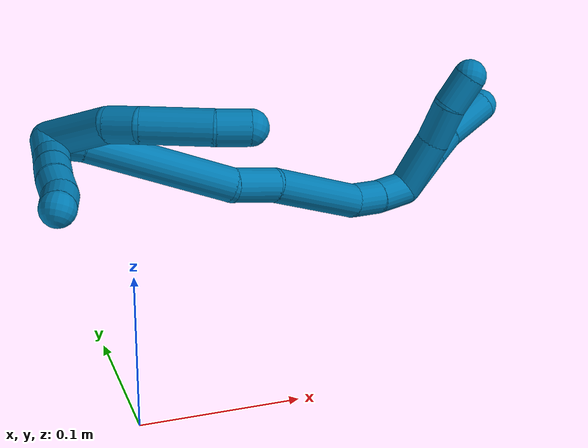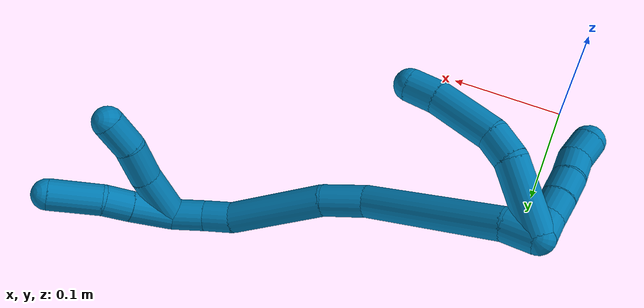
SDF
<sdf version="1.7">
 <world name="default">
  <model name="photoneo_s_sensor">
   <static>1</static>
   <pose>0 0 2 1.57079 1.57079 3.14159</pose>
   <link name="link">
    <inertial><mass>0.1</mass></inertial>
    <sensor name="sensor" type="depth">
     <update_rate>30</update_rate>
     <camera>
      <horizontal_fov>1.22</horizontal_fov>
      <image><width>1920</width><height>1200</height><format>B8G8R8</format></image>
      <clip><near>0.1</near><far>4</far></clip>
      <depth_camera><output>points</output></depth_camera>
     </camera>
     <plugin name="camera_plugin" filename="libgazebo_ros_depth_camera.so">
      <baseline>0.2</baseline>
      <alwaysOn>1</alwaysOn>
      <updateRate>0.0</updateRate>
      <cameraName>camera_ir</cameraName>
      <imageTopicName>/camera/color/image_raw</imageTopicName>
      <cameraInfoTopicName>/camera/color/camera_info</cameraInfoTopicName>
      <depthImageTopicName>/camera/depth/image_raw</depthImageTopicName>
      <depthImageCameraInfoTopicName>/camera/depth/camera_info</depthImageCameraInfoTopicName>
      <pointCloudTopicName>/camera/depth/points</pointCloudTopicName>
      <frameName>fr_optical</frameName>
      <pointCloudCutoff>0.1</pointCloudCutoff>
      <pointCloudCutoffMax>2.0</pointCloudCutoffMax>
      <distortionK1>0</distortionK1>
      <distortionK2>0</distortionK2>
      <distortionK3>0</distortionK3>
      <distortionT1>0</distortionT1>
      <distortionT2>0</distortionT2>
      <CxPrime>0</CxPrime>
      <Cx>0</Cx>
      <Cy>0</Cy>
      <focalLength>0</focalLength>
      <hackBaseline>0</hackBaseline>
     </plugin>
    </sensor>
   </link>
  </model>
  <model name="bin">
   <static>1</static>
   <link name="bottom">
    <collision name="collision-bottom">
     <pose>0 0 -0.01 0 -0 0</pose>
     <geometry><box><size>0.8 0.6 0.02</size></box></geometry>
     <surface>
      <friction><ode><mu>100</mu><mu2>100</mu2></ode></friction>
      <contact><collide_bitmask>65535</collide_bitmask></contact>
     </surface>
    </collision>
   </link>
   <link name="west_wall">
    <collision name="collision-west_wall">
     <pose>-0.41 0 0.1 0 -0 0</pose>
     <geometry><box><size>0.02 0.6 0.2</size></box></geometry>
     <surface>
      <friction><ode><mu>100</mu><mu2>100</mu2></ode></friction>
      <contact><collide_bitmask>65535</collide_bitmask></contact>
     </surface>
    </collision>
   </link>
   <link name="east_wall">
    <collision name="collision-east_wall">
     <pose>0.41 0 0.1 0 -0 0</pose>
     <geometry><box><size>0.02 0.6 0.2</size></box></geometry>
     <surface>
      <friction><ode><mu>100</mu><mu2>100</mu2></ode></friction>
      <contact><collide_bitmask>65535</collide_bitmask></contact>
     </surface>
    </collision>
   </link>
   <link name="south_wall">
    <collision name="collision-south_wall">
     <pose>0 -0.31 0.1 0 -0 0</pose>
     <geometry><box><size>0.8 0.02 0.2</size></box></geometry>
     <surface>
      <friction><ode><mu>100</mu><mu2>100</mu2></ode></friction>
      <contact><collide_bitmask>65535</collide_bitmask></contact>
     </surface>
    </collision>
   </link>
   <link name="north_wall">
    <collision name="collision-north_wall">
     <pose>0 0.31 0.1 0 -0 0</pose>
     <geometry><box><size>0.8 0.02 0.2</size></box></geometry>
     <surface>
      <friction><ode><mu>100</mu><mu2>100</mu2></ode></friction>
      <contact><collide_bitmask>65535</collide_bitmask></contact>
     </surface>
    </collision>
   </link>
  </model>
  <model name="9">
   <static>0</static>
   <link name="9">
    <collision name="collision-cylinder-e_1_2_8">
     <pose>0.020008 -0.018829 0.003181 1.40345 0.808725 0.694146</pose>
     <geometry><cylinder><radius>0.0125</radius><length>0.055315</length></cylinder></geometry>
     <surface>
      <friction><ode><mu>1.16</mu><mu2>1.16</mu2><slip1>0</slip1><slip2>0</slip2></ode></friction>
      <contact><ode><kp>1e+06</kp><kd>1</kd><max_vel>0</max_vel><min_depth>0.001</min_depth></ode></contact>
     </surface>
    </collision>
    <visual name="visual-cylinder-e_1_2_8">
     <pose>0.020008 -0.018829 0.003181 1.40345 0.808725 0.694146</pose>
     <geometry><cylinder><radius>0.0125</radius><length>0.055315</length></cylinder></geometry>
     <material><ambient>0 0.490196 0.709804 1</ambient></material>
    </visual>
    <collision name="collision-cylinder-e_2_8_9">
     <pose>0.050296 -0.042299 0.006688 1.50053 1.14574 1.08263</pose>
     <geometry><cylinder><radius>0.0125</radius><length>0.022571</length></cylinder></geometry>
     <surface>
      <friction><ode><mu>1.16</mu><mu2>1.16</mu2><slip1>0</slip1><slip2>0</slip2></ode></friction>
      <contact><ode><kp>1e+06</kp><kd>1</kd><max_vel>0</max_vel><min_depth>0.001</min_depth></ode></contact>
     </surface>
    </collision>
    <visual name="visual-cylinder-e_2_8_9">
     <pose>0.050296 -0.042299 0.006688 1.50053 1.14574 1.08263</pose>
     <geometry><cylinder><radius>0.0125</radius><length>0.022571</length></cylinder></geometry>
     <material><ambient>0 0.490196 0.709804 1</ambient></material>
    </visual>
    <collision name="collision-cylinder-e_3_9_10">
     <pose>0.084541 -0.049872 0.010203 0.743302 1.39202 0.62963</pose>
     <geometry><cylinder><radius>0.0125</radius><length>0.048704</length></cylinder></geometry>
     <surface>
      <friction><ode><mu>1.16</mu><mu2>1.16</mu2><slip1>0</slip1><slip2>0</slip2></ode></friction>
      <contact><ode><kp>1e+06</kp><kd>1</kd><max_vel>0</max_vel><min_depth>0.001</min_depth></ode></contact>
     </surface>
    </collision>
    <visual name="visual-cylinder-e_3_9_10">
     <pose>0.084541 -0.049872 0.010203 0.743302 1.39202 0.62963</pose>
     <geometry><cylinder><radius>0.0125</radius><length>0.048704</length></cylinder></geometry>
     <material><ambient>0 0.490196 0.709804 1</ambient></material>
    </visual>
    <collision name="collision-cylinder-e_4_10_6">
     <pose>0.119919 -0.052331 0.015941 -0.182701 1.34738 -0.145994</pose>
     <geometry><cylinder><radius>0.0125</radius><length>0.02341</length></cylinder></geometry>
     <surface>
      <friction><ode><mu>1.16</mu><mu2>1.16</mu2><slip1>0</slip1><slip2>0</slip2></ode></friction>
      <contact><ode><kp>1e+06</kp><kd>1</kd><max_vel>0</max_vel><min_depth>0.001</min_depth></ode></contact>
     </surface>
    </collision>
    <visual name="visual-cylinder-e_4_10_6">
     <pose>0.119919 -0.052331 0.015941 -0.182701 1.34738 -0.145994</pose>
     <geometry><cylinder><radius>0.0125</radius><length>0.02341</length></cylinder></geometry>
     <material><ambient>0 0.490196 0.709804 1</ambient></material>
    </visual>
    <collision name="collision-cylinder-e_1_2_11">
     <pose>0.002916 -0.005837 -0.007578 2.48528 0.295847 0.825105</pose>
     <geometry><cylinder><radius>0.0125</radius><length>0.02</length></cylinder></geometry>
     <surface>
      <friction><ode><mu>1.16</mu><mu2>1.16</mu2><slip1>0</slip1><slip2>0</slip2></ode></friction>
      <contact><ode><kp>1e+06</kp><kd>1</kd><max_vel>0</max_vel><min_depth>0.001</min_depth></ode></contact>
     </surface>
    </collision>
    <visual name="visual-cylinder-e_1_2_11">
     <pose>0.002916 -0.005837 -0.007578 2.48528 0.295847 0.825105</pose>
     <geometry><cylinder><radius>0.0125</radius><length>0.02</length></cylinder></geometry>
     <material><ambient>0 0.490196 0.709804 1</ambient></material>
    </visual>
    <collision name="collision-cylinder-e_2_11_12">
     <pose>0.007696 -0.019573 -0.020998 2.20757 0.187601 0.368922</pose>
     <geometry><cylinder><radius>0.0125</radius><length>0.02</length></cylinder></geometry>
     <surface>
      <friction><ode><mu>1.16</mu><mu2>1.16</mu2><slip1>0</slip1><slip2>0</slip2></ode></friction>
      <contact><ode><kp>1e+06</kp><kd>1</kd><max_vel>0</max_vel><min_depth>0.001</min_depth></ode></contact>
     </surface>
    </collision>
    <visual name="visual-cylinder-e_2_11_12">
     <pose>0.007696 -0.019573 -0.020998 2.20757 0.187601 0.368922</pose>
     <geometry><cylinder><radius>0.0125</radius><length>0.02</length></cylinder></geometry>
     <material><ambient>0 0.490196 0.709804 1</ambient></material>
    </visual>
    <collision name="collision-cylinder-e_3_12_13">
     <pose>0.011865 -0.034941 -0.033077 2.26657 0.232479 0.489273</pose>
     <geometry><cylinder><radius>0.0125</radius><length>0.02</length></cylinder></geometry>
     <surface>
      <friction><ode><mu>1.16</mu><mu2>1.16</mu2><slip1>0</slip1><slip2>0</slip2></ode></friction>
      <contact><ode><kp>1e+06</kp><kd>1</kd><max_vel>0</max_vel><min_depth>0.001</min_depth></ode></contact>
     </surface>
    </collision>
    <visual name="visual-cylinder-e_3_12_13">
     <pose>0.011865 -0.034941 -0.033077 2.26657 0.232479 0.489273</pose>
     <geometry><cylinder><radius>0.0125</radius><length>0.02</length></cylinder></geometry>
     <material><ambient>0 0.490196 0.709804 1</ambient></material>
    </visual>
    <collision name="collision-cylinder-e_4_13_14">
     <pose>0.017638 -0.048994 -0.045994 2.36339 0.354272 0.823327</pose>
     <geometry><cylinder><radius>0.0125</radius><length>0.02</length></cylinder></geometry>
     <surface>
      <friction><ode><mu>1.16</mu><mu2>1.16</mu2><slip1>0</slip1><slip2>0</slip2></ode></friction>
      <contact><ode><kp>1e+06</kp><kd>1</kd><max_vel>0</max_vel><min_depth>0.001</min_depth></ode></contact>
     </surface>
    </collision>
    <visual name="visual-cylinder-e_4_13_14">
     <pose>0.017638 -0.048994 -0.045994 2.36339 0.354272 0.823327</pose>
     <geometry><cylinder><radius>0.0125</radius><length>0.02</length></cylinder></geometry>
     <material><ambient>0 0.490196 0.709804 1</ambient></material>
    </visual>
    <collision name="collision-cylinder-e_5_14_5">
     <pose>0.021917 -0.063372 -0.058887 2.2438 0.081081 0.168019</pose>
     <geometry><cylinder><radius>0.0125</radius><length>0.02</length></cylinder></geometry>
     <surface>
      <friction><ode><mu>1.16</mu><mu2>1.16</mu2><slip1>0</slip1><slip2>0</slip2></ode></friction>
      <contact><ode><kp>1e+06</kp><kd>1</kd><max_vel>0</max_vel><min_depth>0.001</min_depth></ode></contact>
     </surface>
    </collision>
    <visual name="visual-cylinder-e_5_14_5">
     <pose>0.021917 -0.063372 -0.058887 2.2438 0.081081 0.168019</pose>
     <geometry><cylinder><radius>0.0125</radius><length>0.02</length></cylinder></geometry>
     <material><ambient>0 0.490196 0.709804 1</ambient></material>
    </visual>
    <collision name="collision-cylinder-e_1_2_15">
     <pose>0.011929 0.001841 0.001554 -0.869636 1.37151 -0.72636</pose>
     <geometry><cylinder><radius>0.0125</radius><length>0.024341</length></cylinder></geometry>
     <surface>
      <friction><ode><mu>1.16</mu><mu2>1.16</mu2><slip1>0</slip1><slip2>0</slip2></ode></friction>
      <contact><ode><kp>1e+06</kp><kd>1</kd><max_vel>0</max_vel><min_depth>0.001</min_depth></ode></contact>
     </surface>
    </collision>
    <visual name="visual-cylinder-e_1_2_15">
     <pose>0.011929 0.001841 0.001554 -0.869636 1.37151 -0.72636</pose>
     <geometry><cylinder><radius>0.0125</radius><length>0.024341</length></cylinder></geometry>
     <material><ambient>0 0.490196 0.709804 1</ambient></material>
    </visual>
    <collision name="collision-cylinder-e_2_15_16">
     <pose>0.07549 0.022932 0.004765 -1.48496 1.21272 -1.13351</pose>
     <geometry><cylinder><radius>0.0125</radius><length>0.110255</length></cylinder></geometry>
     <surface>
      <friction><ode><mu>1.16</mu><mu2>1.16</mu2><slip1>0</slip1><slip2>0</slip2></ode></friction>
      <contact><ode><kp>1e+06</kp><kd>1</kd><max_vel>0</max_vel><min_depth>0.001</min_depth></ode></contact>
     </surface>
    </collision>
    <visual name="visual-cylinder-e_2_15_16">
     <pose>0.07549 0.022932 0.004765 -1.48496 1.21272 -1.13351</pose>
     <geometry><cylinder><radius>0.0125</radius><length>0.110255</length></cylinder></geometry>
     <material><ambient>0 0.490196 0.709804 1</ambient></material>
    </visual>
    <collision name="collision-cylinder-e_3_16_17">
     <pose>0.141568 0.05005 0.011831 -0.968549 0.986755 -0.551352</pose>
     <geometry><cylinder><radius>0.0125</radius><length>0.034636</length></cylinder></geometry>
     <surface>
      <friction><ode><mu>1.16</mu><mu2>1.16</mu2><slip1>0</slip1><slip2>0</slip2></ode></friction>
      <contact><ode><kp>1e+06</kp><kd>1</kd><max_vel>0</max_vel><min_depth>0.001</min_depth></ode></contact>
     </surface>
    </collision>
    <visual name="visual-cylinder-e_3_16_17">
     <pose>0.141568 0.05005 0.011831 -0.968549 0.986755 -0.551352</pose>
     <geometry><cylinder><radius>0.0125</radius><length>0.034636</length></cylinder></geometry>
     <material><ambient>0 0.490196 0.709804 1</ambient></material>
    </visual>
    <collision name="collision-cylinder-e_4_17_18">
     <pose>0.18628 0.083039 0.024868 -1.27601 0.856288 -0.652571</pose>
     <geometry><cylinder><radius>0.0125</radius><length>0.080129</length></cylinder></geometry>
     <surface>
      <friction><ode><mu>1.16</mu><mu2>1.16</mu2><slip1>0</slip1><slip2>0</slip2></ode></friction>
      <contact><ode><kp>1e+06</kp><kd>1</kd><max_vel>0</max_vel><min_depth>0.001</min_depth></ode></contact>
     </surface>
    </collision>
    <visual name="visual-cylinder-e_4_17_18">
     <pose>0.18628 0.083039 0.024868 -1.27601 0.856288 -0.652571</pose>
     <geometry><cylinder><radius>0.0125</radius><length>0.080129</length></cylinder></geometry>
     <material><ambient>0 0.490196 0.709804 1</ambient></material>
    </visual>
    <collision name="collision-cylinder-e_5_18_19">
     <pose>0.226147 0.112985 0.037396 -0.777657 0.949173 -0.414896</pose>
     <geometry><cylinder><radius>0.0125</radius><length>0.023622</length></cylinder></geometry>
     <surface>
      <friction><ode><mu>1.16</mu><mu2>1.16</mu2><slip1>0</slip1><slip2>0</slip2></ode></friction>
      <contact><ode><kp>1e+06</kp><kd>1</kd><max_vel>0</max_vel><min_depth>0.001</min_depth></ode></contact>
     </surface>
    </collision>
    <visual name="visual-cylinder-e_5_18_19">
     <pose>0.226147 0.112985 0.037396 -0.777657 0.949173 -0.414896</pose>
     <geometry><cylinder><radius>0.0125</radius><length>0.023622</length></cylinder></geometry>
     <material><ambient>0 0.490196 0.709804 1</ambient></material>
    </visual>
    <collision name="collision-cylinder-e_6_19_1">
     <pose>0.245772 0.123227 0.049556 -0.641015 0.836022 -0.29279</pose>
     <geometry><cylinder><radius>0.0125</radius><length>0.027018</length></cylinder></geometry>
     <surface>
      <friction><ode><mu>1.16</mu><mu2>1.16</mu2><slip1>0</slip1><slip2>0</slip2></ode></friction>
      <contact><ode><kp>1e+06</kp><kd>1</kd><max_vel>0</max_vel><min_depth>0.001</min_depth></ode></contact>
     </surface>
    </collision>
    <visual name="visual-cylinder-e_6_19_1">
     <pose>0.245772 0.123227 0.049556 -0.641015 0.836022 -0.29279</pose>
     <geometry><cylinder><radius>0.0125</radius><length>0.027018</length></cylinder></geometry>
     <material><ambient>0 0.490196 0.709804 1</ambient></material>
    </visual>
    <collision name="collision-cylinder-e_1_1_20">
     <pose>0.26363 0.130618 0.072999 -0.121477 0.44794 -0.027704</pose>
     <geometry><cylinder><radius>0.0125</radius><length>0.036178</length></cylinder></geometry>
     <surface>
      <friction><ode><mu>1.16</mu><mu2>1.16</mu2><slip1>0</slip1><slip2>0</slip2></ode></friction>
      <contact><ode><kp>1e+06</kp><kd>1</kd><max_vel>0</max_vel><min_depth>0.001</min_depth></ode></contact>
     </surface>
    </collision>
    <visual name="visual-cylinder-e_1_1_20">
     <pose>0.26363 0.130618 0.072999 -0.121477 0.44794 -0.027704</pose>
     <geometry><cylinder><radius>0.0125</radius><length>0.036178</length></cylinder></geometry>
     <material><ambient>0 0.490196 0.709804 1</ambient></material>
    </visual>
    <collision name="collision-cylinder-e_2_20_21">
     <pose>0.276524 0.133466 0.098949 -0.089074 0.476367 -0.02164</pose>
     <geometry><cylinder><radius>0.0125</radius><length>0.022066</length></cylinder></geometry>
     <surface>
      <friction><ode><mu>1.16</mu><mu2>1.16</mu2><slip1>0</slip1><slip2>0</slip2></ode></friction>
      <contact><ode><kp>1e+06</kp><kd>1</kd><max_vel>0</max_vel><min_depth>0.001</min_depth></ode></contact>
     </surface>
    </collision>
    <visual name="visual-cylinder-e_2_20_21">
     <pose>0.276524 0.133466 0.098949 -0.089074 0.476367 -0.02164</pose>
     <geometry><cylinder><radius>0.0125</radius><length>0.022066</length></cylinder></geometry>
     <material><ambient>0 0.490196 0.709804 1</ambient></material>
    </visual>
    <collision name="collision-cylinder-e_3_21_4">
     <pose>0.293738 0.139883 0.124758 -0.332721 0.621411 -0.107731</pose>
     <geometry><cylinder><radius>0.0125</radius><length>0.041756</length></cylinder></geometry>
     <surface>
      <friction><ode><mu>1.16</mu><mu2>1.16</mu2><slip1>0</slip1><slip2>0</slip2></ode></friction>
      <contact><ode><kp>1e+06</kp><kd>1</kd><max_vel>0</max_vel><min_depth>0.001</min_depth></ode></contact>
     </surface>
    </collision>
    <visual name="visual-cylinder-e_3_21_4">
     <pose>0.293738 0.139883 0.124758 -0.332721 0.621411 -0.107731</pose>
     <geometry><cylinder><radius>0.0125</radius><length>0.041756</length></cylinder></geometry>
     <material><ambient>0 0.490196 0.709804 1</ambient></material>
    </visual>
    <collision name="collision-cylinder-e_1_1_22">
     <pose>0.262286 0.116503 0.073204 0.637494 0.308085 0.10239</pose>
     <geometry><cylinder><radius>0.0125</radius><length>0.042807</length></cylinder></geometry>
     <surface>
      <friction><ode><mu>1.16</mu><mu2>1.16</mu2><slip1>0</slip1><slip2>0</slip2></ode></friction>
      <contact><ode><kp>1e+06</kp><kd>1</kd><max_vel>0</max_vel><min_depth>0.001</min_depth></ode></contact>
     </surface>
    </collision>
    <visual name="visual-cylinder-e_1_1_22">
     <pose>0.262286 0.116503 0.073204 0.637494 0.308085 0.10239</pose>
     <geometry><cylinder><radius>0.0125</radius><length>0.042807</length></cylinder></geometry>
     <material><ambient>0 0.490196 0.709804 1</ambient></material>
    </visual>
    <collision name="collision-cylinder-e_2_22_23">
     <pose>0.271713 0.094431 0.10083 0.72393 0.193377 0.073418</pose>
     <geometry><cylinder><radius>0.0125</radius><length>0.030564</length></cylinder></geometry>
     <surface>
      <friction><ode><mu>1.16</mu><mu2>1.16</mu2><slip1>0</slip1><slip2>0</slip2></ode></friction>
      <contact><ode><kp>1e+06</kp><kd>1</kd><max_vel>0</max_vel><min_depth>0.001</min_depth></ode></contact>
     </surface>
    </collision>
    <visual name="visual-cylinder-e_2_22_23">
     <pose>0.271713 0.094431 0.10083 0.72393 0.193377 0.073418</pose>
     <geometry><cylinder><radius>0.0125</radius><length>0.030564</length></cylinder></geometry>
     <material><ambient>0 0.490196 0.709804 1</ambient></material>
    </visual>
    <collision name="collision-cylinder-e_3_23_3">
     <pose>0.279466 0.077979 0.12263 0.552891 0.370111 0.10612</pose>
     <geometry><cylinder><radius>0.0125</radius><length>0.026629</length></cylinder></geometry>
     <surface>
      <friction><ode><mu>1.16</mu><mu2>1.16</mu2><slip1>0</slip1><slip2>0</slip2></ode></friction>
      <contact><ode><kp>1e+06</kp><kd>1</kd><max_vel>0</max_vel><min_depth>0.001</min_depth></ode></contact>
     </surface>
    </collision>
    <visual name="visual-cylinder-e_3_23_3">
     <pose>0.279466 0.077979 0.12263 0.552891 0.370111 0.10612</pose>
     <geometry><cylinder><radius>0.0125</radius><length>0.026629</length></cylinder></geometry>
     <material><ambient>0 0.490196 0.709804 1</ambient></material>
    </visual>
    <collision name="collision-sphere-3">
     <pose>0.284282 0.071461 0.133193 0 -0 0</pose>
     <geometry><sphere><radius>0.0125</radius></sphere></geometry>
     <surface>
      <friction><ode><mu>1.16</mu><mu2>1.16</mu2><slip1>0</slip1><slip2>0</slip2></ode></friction>
      <contact><ode><kp>1e+06</kp><kd>1</kd><max_vel>0</max_vel><min_depth>0.001</min_depth></ode></contact>
     </surface>
    </collision>
    <visual name="visual-sphere-3">
     <pose>0.284282 0.071461 0.133193 0 -0 0</pose>
     <geometry><sphere><radius>0.0125</radius></sphere></geometry>
     <material><ambient>0 0.490196 0.709804 1</ambient></material>
    </visual>
    <collision name="collision-sphere-23">
     <pose>0.27465 0.084498 0.112066 0 -0 0</pose>
     <geometry><sphere><radius>0.0125</radius></sphere></geometry>
     <surface>
      <friction><ode><mu>1.16</mu><mu2>1.16</mu2><slip1>0</slip1><slip2>0</slip2></ode></friction>
      <contact><ode><kp>1e+06</kp><kd>1</kd><max_vel>0</max_vel><min_depth>0.001</min_depth></ode></contact>
     </surface>
    </collision>
    <visual name="visual-sphere-23">
     <pose>0.27465 0.084498 0.112066 0 -0 0</pose>
     <geometry><sphere><radius>0.0125</radius></sphere></geometry>
     <material><ambient>0 0.490196 0.709804 1</ambient></material>
    </visual>
    <collision name="collision-sphere-22">
     <pose>0.268776 0.104364 0.089594 0 -0 0</pose>
     <geometry><sphere><radius>0.0125</radius></sphere></geometry>
     <surface>
      <friction><ode><mu>1.16</mu><mu2>1.16</mu2><slip1>0</slip1><slip2>0</slip2></ode></friction>
      <contact><ode><kp>1e+06</kp><kd>1</kd><max_vel>0</max_vel><min_depth>0.001</min_depth></ode></contact>
     </surface>
    </collision>
    <visual name="visual-sphere-22">
     <pose>0.268776 0.104364 0.089594 0 -0 0</pose>
     <geometry><sphere><radius>0.0125</radius></sphere></geometry>
     <material><ambient>0 0.490196 0.709804 1</ambient></material>
    </visual>
    <collision name="collision-sphere-4">
     <pose>0.305893 0.145427 0.140803 0 -0 0</pose>
     <geometry><sphere><radius>0.0125</radius></sphere></geometry>
     <surface>
      <friction><ode><mu>1.16</mu><mu2>1.16</mu2><slip1>0</slip1><slip2>0</slip2></ode></friction>
      <contact><ode><kp>1e+06</kp><kd>1</kd><max_vel>0</max_vel><min_depth>0.001</min_depth></ode></contact>
     </surface>
    </collision>
    <visual name="visual-sphere-4">
     <pose>0.305893 0.145427 0.140803 0 -0 0</pose>
     <geometry><sphere><radius>0.0125</radius></sphere></geometry>
     <material><ambient>0 0.490196 0.709804 1</ambient></material>
    </visual>
    <collision name="collision-sphere-21">
     <pose>0.281583 0.134338 0.108714 0 -0 0</pose>
     <geometry><sphere><radius>0.0125</radius></sphere></geometry>
     <surface>
      <friction><ode><mu>1.16</mu><mu2>1.16</mu2><slip1>0</slip1><slip2>0</slip2></ode></friction>
      <contact><ode><kp>1e+06</kp><kd>1</kd><max_vel>0</max_vel><min_depth>0.001</min_depth></ode></contact>
     </surface>
    </collision>
    <visual name="visual-sphere-21">
     <pose>0.281583 0.134338 0.108714 0 -0 0</pose>
     <geometry><sphere><radius>0.0125</radius></sphere></geometry>
     <material><ambient>0 0.490196 0.709804 1</ambient></material>
    </visual>
    <collision name="collision-sphere-20">
     <pose>0.271464 0.132594 0.089183 0 -0 0</pose>
     <geometry><sphere><radius>0.0125</radius></sphere></geometry>
     <surface>
      <friction><ode><mu>1.16</mu><mu2>1.16</mu2><slip1>0</slip1><slip2>0</slip2></ode></friction>
      <contact><ode><kp>1e+06</kp><kd>1</kd><max_vel>0</max_vel><min_depth>0.001</min_depth></ode></contact>
     </surface>
    </collision>
    <visual name="visual-sphere-20">
     <pose>0.271464 0.132594 0.089183 0 -0 0</pose>
     <geometry><sphere><radius>0.0125</radius></sphere></geometry>
     <material><ambient>0 0.490196 0.709804 1</ambient></material>
    </visual>
    <collision name="collision-sphere-11">
     <pose>0.005831 -0.011674 -0.015157 0 -0 0</pose>
     <geometry><sphere><radius>0.0125</radius></sphere></geometry>
     <surface>
      <friction><ode><mu>1.16</mu><mu2>1.16</mu2><slip1>0</slip1><slip2>0</slip2></ode></friction>
      <contact><ode><kp>1e+06</kp><kd>1</kd><max_vel>0</max_vel><min_depth>0.001</min_depth></ode></contact>
     </surface>
    </collision>
    <visual name="visual-sphere-11">
     <pose>0.005831 -0.011674 -0.015157 0 -0 0</pose>
     <geometry><sphere><radius>0.0125</radius></sphere></geometry>
     <material><ambient>0 0.490196 0.709804 1</ambient></material>
    </visual>
    <collision name="collision-sphere-6">
     <pose>0.131334 -0.05186 0.018492 0 -0 0</pose>
     <geometry><sphere><radius>0.0125</radius></sphere></geometry>
     <surface>
      <friction><ode><mu>1.16</mu><mu2>1.16</mu2><slip1>0</slip1><slip2>0</slip2></ode></friction>
      <contact><ode><kp>1e+06</kp><kd>1</kd><max_vel>0</max_vel><min_depth>0.001</min_depth></ode></contact>
     </surface>
    </collision>
    <visual name="visual-sphere-6">
     <pose>0.131334 -0.05186 0.018492 0 -0 0</pose>
     <geometry><sphere><radius>0.0125</radius></sphere></geometry>
     <material><ambient>0 0.490196 0.709804 1</ambient></material>
    </visual>
    <collision name="collision-sphere-10">
     <pose>0.108505 -0.052803 0.013391 0 -0 0</pose>
     <geometry><sphere><radius>0.0125</radius></sphere></geometry>
     <surface>
      <friction><ode><mu>1.16</mu><mu2>1.16</mu2><slip1>0</slip1><slip2>0</slip2></ode></friction>
      <contact><ode><kp>1e+06</kp><kd>1</kd><max_vel>0</max_vel><min_depth>0.001</min_depth></ode></contact>
     </surface>
    </collision>
    <visual name="visual-sphere-10">
     <pose>0.108505 -0.052803 0.013391 0 -0 0</pose>
     <geometry><sphere><radius>0.0125</radius></sphere></geometry>
     <material><ambient>0 0.490196 0.709804 1</ambient></material>
    </visual>
    <collision name="collision-sphere-9">
     <pose>0.060577 -0.046942 0.007015 0 -0 0</pose>
     <geometry><sphere><radius>0.0125</radius></sphere></geometry>
     <surface>
      <friction><ode><mu>1.16</mu><mu2>1.16</mu2><slip1>0</slip1><slip2>0</slip2></ode></friction>
      <contact><ode><kp>1e+06</kp><kd>1</kd><max_vel>0</max_vel><min_depth>0.001</min_depth></ode></contact>
     </surface>
    </collision>
    <visual name="visual-sphere-9">
     <pose>0.060577 -0.046942 0.007015 0 -0 0</pose>
     <geometry><sphere><radius>0.0125</radius></sphere></geometry>
     <material><ambient>0 0.490196 0.709804 1</ambient></material>
    </visual>
    <collision name="collision-sphere-2">
     <geometry><sphere><radius>0.0125</radius></sphere></geometry>
     <surface>
      <friction><ode><mu>1.16</mu><mu2>1.16</mu2><slip1>0</slip1><slip2>0</slip2></ode></friction>
      <contact><ode><kp>1e+06</kp><kd>1</kd><max_vel>0</max_vel><min_depth>0.001</min_depth></ode></contact>
     </surface>
    </collision>
    <visual name="visual-sphere-2">
     <geometry><sphere><radius>0.0125</radius></sphere></geometry>
     <material><ambient>0 0.490196 0.709804 1</ambient></material>
    </visual>
    <collision name="collision-sphere-19">
     <pose>0.235749 0.117811 0.042297 0 -0 0</pose>
     <geometry><sphere><radius>0.0125</radius></sphere></geometry>
     <surface>
      <friction><ode><mu>1.16</mu><mu2>1.16</mu2><slip1>0</slip1><slip2>0</slip2></ode></friction>
      <contact><ode><kp>1e+06</kp><kd>1</kd><max_vel>0</max_vel><min_depth>0.001</min_depth></ode></contact>
     </surface>
    </collision>
    <visual name="visual-sphere-19">
     <pose>0.235749 0.117811 0.042297 0 -0 0</pose>
     <geometry><sphere><radius>0.0125</radius></sphere></geometry>
     <material><ambient>0 0.490196 0.709804 1</ambient></material>
    </visual>
    <collision name="collision-sphere-8">
     <pose>0.040015 -0.037657 0.006361 0 -0 0</pose>
     <geometry><sphere><radius>0.0125</radius></sphere></geometry>
     <surface>
      <friction><ode><mu>1.16</mu><mu2>1.16</mu2><slip1>0</slip1><slip2>0</slip2></ode></friction>
      <contact><ode><kp>1e+06</kp><kd>1</kd><max_vel>0</max_vel><min_depth>0.001</min_depth></ode></contact>
     </surface>
    </collision>
    <visual name="visual-sphere-8">
     <pose>0.040015 -0.037657 0.006361 0 -0 0</pose>
     <geometry><sphere><radius>0.0125</radius></sphere></geometry>
     <material><ambient>0 0.490196 0.709804 1</ambient></material>
    </visual>
    <collision name="collision-sphere-12">
     <pose>0.009561 -0.027472 -0.02684 0 -0 0</pose>
     <geometry><sphere><radius>0.0125</radius></sphere></geometry>
     <surface>
      <friction><ode><mu>1.16</mu><mu2>1.16</mu2><slip1>0</slip1><slip2>0</slip2></ode></friction>
      <contact><ode><kp>1e+06</kp><kd>1</kd><max_vel>0</max_vel><min_depth>0.001</min_depth></ode></contact>
     </surface>
    </collision>
    <visual name="visual-sphere-12">
     <pose>0.009561 -0.027472 -0.02684 0 -0 0</pose>
     <geometry><sphere><radius>0.0125</radius></sphere></geometry>
     <material><ambient>0 0.490196 0.709804 1</ambient></material>
    </visual>
    <collision name="collision-sphere-13">
     <pose>0.014169 -0.04241 -0.039315 0 -0 0</pose>
     <geometry><sphere><radius>0.0125</radius></sphere></geometry>
     <surface>
      <friction><ode><mu>1.16</mu><mu2>1.16</mu2><slip1>0</slip1><slip2>0</slip2></ode></friction>
      <contact><ode><kp>1e+06</kp><kd>1</kd><max_vel>0</max_vel><min_depth>0.001</min_depth></ode></contact>
     </surface>
    </collision>
    <visual name="visual-sphere-13">
     <pose>0.014169 -0.04241 -0.039315 0 -0 0</pose>
     <geometry><sphere><radius>0.0125</radius></sphere></geometry>
     <material><ambient>0 0.490196 0.709804 1</ambient></material>
    </visual>
    <collision name="collision-sphere-14">
     <pose>0.021107 -0.055578 -0.052674 0 -0 0</pose>
     <geometry><sphere><radius>0.0125</radius></sphere></geometry>
     <surface>
      <friction><ode><mu>1.16</mu><mu2>1.16</mu2><slip1>0</slip1><slip2>0</slip2></ode></friction>
      <contact><ode><kp>1e+06</kp><kd>1</kd><max_vel>0</max_vel><min_depth>0.001</min_depth></ode></contact>
     </surface>
    </collision>
    <visual name="visual-sphere-14">
     <pose>0.021107 -0.055578 -0.052674 0 -0 0</pose>
     <geometry><sphere><radius>0.0125</radius></sphere></geometry>
     <material><ambient>0 0.490196 0.709804 1</ambient></material>
    </visual>
    <collision name="collision-sphere-5">
     <pose>0.022727 -0.071166 -0.065099 0 -0 0</pose>
     <geometry><sphere><radius>0.0125</radius></sphere></geometry>
     <surface>
      <friction><ode><mu>1.16</mu><mu2>1.16</mu2><slip1>0</slip1><slip2>0</slip2></ode></friction>
      <contact><ode><kp>1e+06</kp><kd>1</kd><max_vel>0</max_vel><min_depth>0.001</min_depth></ode></contact>
     </surface>
    </collision>
    <visual name="visual-sphere-5">
     <pose>0.022727 -0.071166 -0.065099 0 -0 0</pose>
     <geometry><sphere><radius>0.0125</radius></sphere></geometry>
     <material><ambient>0 0.490196 0.709804 1</ambient></material>
    </visual>
    <collision name="collision-sphere-15">
     <pose>0.023859 0.003682 0.003109 0 -0 0</pose>
     <geometry><sphere><radius>0.0125</radius></sphere></geometry>
     <surface>
      <friction><ode><mu>1.16</mu><mu2>1.16</mu2><slip1>0</slip1><slip2>0</slip2></ode></friction>
      <contact><ode><kp>1e+06</kp><kd>1</kd><max_vel>0</max_vel><min_depth>0.001</min_depth></ode></contact>
     </surface>
    </collision>
    <visual name="visual-sphere-15">
     <pose>0.023859 0.003682 0.003109 0 -0 0</pose>
     <geometry><sphere><radius>0.0125</radius></sphere></geometry>
     <material><ambient>0 0.490196 0.709804 1</ambient></material>
    </visual>
    <collision name="collision-sphere-16">
     <pose>0.12712 0.042181 0.006421 0 -0 0</pose>
     <geometry><sphere><radius>0.0125</radius></sphere></geometry>
     <surface>
      <friction><ode><mu>1.16</mu><mu2>1.16</mu2><slip1>0</slip1><slip2>0</slip2></ode></friction>
      <contact><ode><kp>1e+06</kp><kd>1</kd><max_vel>0</max_vel><min_depth>0.001</min_depth></ode></contact>
     </surface>
    </collision>
    <visual name="visual-sphere-16">
     <pose>0.12712 0.042181 0.006421 0 -0 0</pose>
     <geometry><sphere><radius>0.0125</radius></sphere></geometry>
     <material><ambient>0 0.490196 0.709804 1</ambient></material>
    </visual>
    <collision name="collision-sphere-17">
     <pose>0.156015 0.057919 0.01724 0 -0 0</pose>
     <geometry><sphere><radius>0.0125</radius></sphere></geometry>
     <surface>
      <friction><ode><mu>1.16</mu><mu2>1.16</mu2><slip1>0</slip1><slip2>0</slip2></ode></friction>
      <contact><ode><kp>1e+06</kp><kd>1</kd><max_vel>0</max_vel><min_depth>0.001</min_depth></ode></contact>
     </surface>
    </collision>
    <visual name="visual-sphere-17">
     <pose>0.156015 0.057919 0.01724 0 -0 0</pose>
     <geometry><sphere><radius>0.0125</radius></sphere></geometry>
     <material><ambient>0 0.490196 0.709804 1</ambient></material>
    </visual>
    <collision name="collision-sphere-18">
     <pose>0.216546 0.108159 0.032495 0 -0 0</pose>
     <geometry><sphere><radius>0.0125</radius></sphere></geometry>
     <surface>
      <friction><ode><mu>1.16</mu><mu2>1.16</mu2><slip1>0</slip1><slip2>0</slip2></ode></friction>
      <contact><ode><kp>1e+06</kp><kd>1</kd><max_vel>0</max_vel><min_depth>0.001</min_depth></ode></contact>
     </surface>
    </collision>
    <visual name="visual-sphere-18">
     <pose>0.216546 0.108159 0.032495 0 -0 0</pose>
     <geometry><sphere><radius>0.0125</radius></sphere></geometry>
     <material><ambient>0 0.490196 0.709804 1</ambient></material>
    </visual>
    <collision name="collision-sphere-1">
     <pose>0.255795 0.128643 0.056814 0 -0 0</pose>
     <geometry><sphere><radius>0.0125</radius></sphere></geometry>
     <surface>
      <friction><ode><mu>1.16</mu><mu2>1.16</mu2><slip1>0</slip1><slip2>0</slip2></ode></friction>
      <contact><ode><kp>1e+06</kp><kd>1</kd><max_vel>0</max_vel><min_depth>0.001</min_depth></ode></contact>
     </surface>
    </collision>
    <visual name="visual-sphere-1">
     <pose>0.255795 0.128643 0.056814 0 -0 0</pose>
     <geometry><sphere><radius>0.0125</radius></sphere></geometry>
     <material><ambient>0 0.490196 0.709804 1</ambient></material>
    </visual>
    <inertial>
     <pose>0.140949 0.041754 0.030092 0 -0 0</pose>
     <mass>0.75</mass>
     <inertia>
      <ixx>8.3e-05</ixx>
      <ixy>0</ixy>
      <ixz>0</ixz>
      <iyy>0.000143</iyy>
      <iyz>0</iyz>
      <izz>-0.00023</izz>
     </inertia>
    </inertial>
   </link>
   <pose>-0.010292 0.204774 0.103581 -0.73468 0.189718 -0.359323</pose>
  </model>
 </world>
</sdf>
